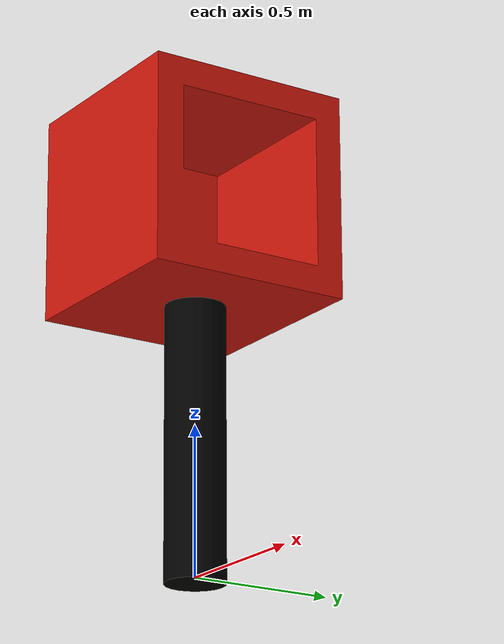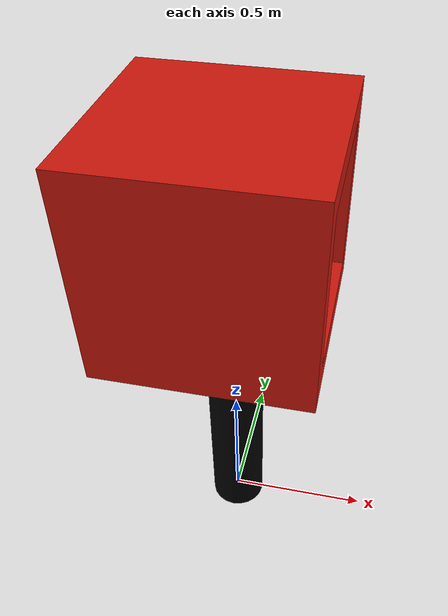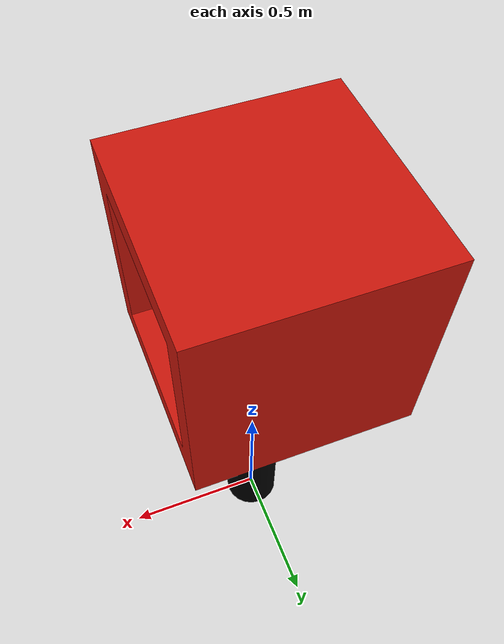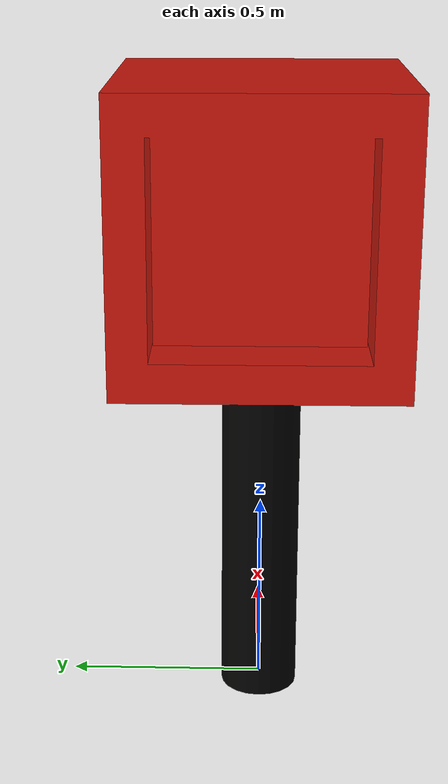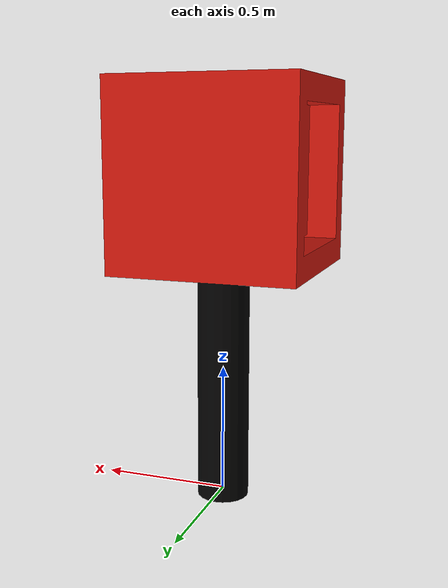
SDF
<?xml version='1.0'?>
<sdf version='1.6'>
  <model name="orange_box_small">
    <static>true</static>
    <pose>0 0 0 0 0 0</pose>

    <link name="orange_box_small">
      <pose>0 0 1 0 0 0</pose>
      <visual name="box">
        <geometry>
          <mesh>
            <uri>model://orange_box_small/orange_box_small.dae</uri>
          </mesh>
        </geometry>
      </visual>
    </link>

  </model>
</sdf>
